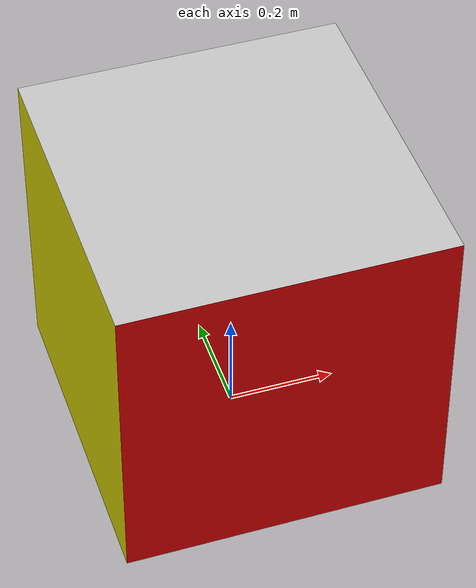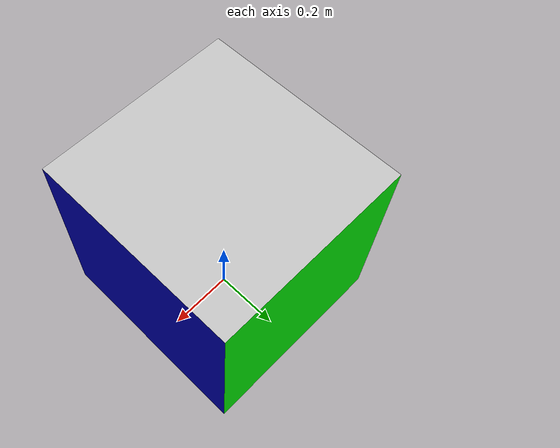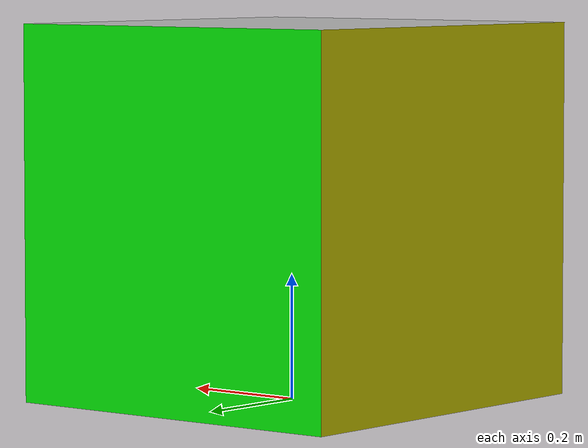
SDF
<?xml version="1.0" ?>
<sdf version="1.6">
  <model name="colorbox">
    <pose>0 0 0.3 0 0 0</pose>
    <static>true</static>
    <link name="link">
      <collision name="collision">
        <geometry>
          <box>
            <size>0.6 0.6 0.6</size>
          </box>
        </geometry>
      </collision>

      <visual name="visual">
        <geometry>
          <mesh>
            <uri>model://colorbox/meshes/mesh.dae</uri>
          </mesh>
        </geometry>
      </visual>
    </link>
  </model>
</sdf>
